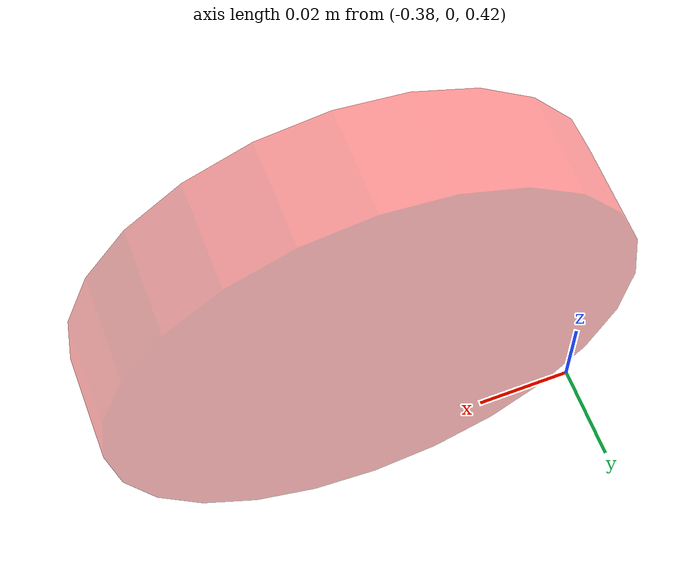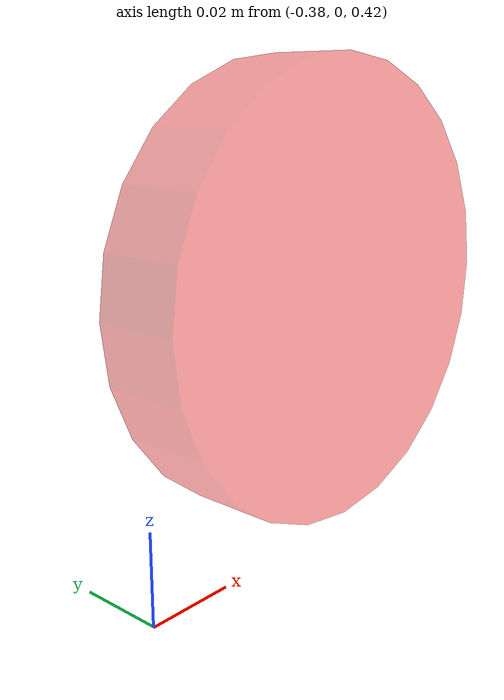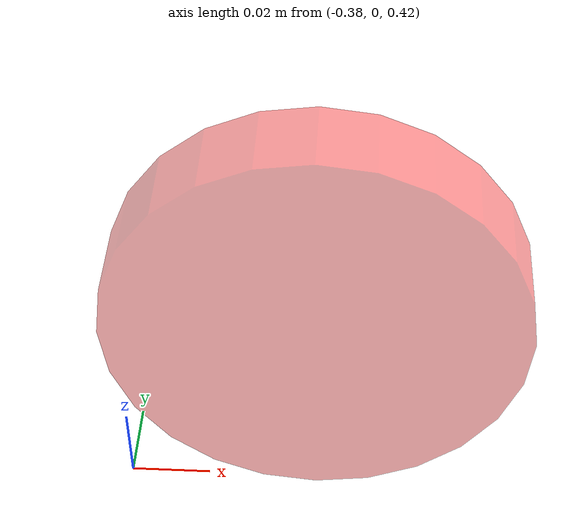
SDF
<?xml version="1.0" ?>
<sdf version="1.5">

  <model name="Red_light">
    <static>true</static>

      <link name='Red_light_source'>
      <pose>-0.332 0 0.48 1.57 0 0</pose>

      <light name='red' type='spot'>
        <pose>0 0 0.0 1.57 0 0</pose>
        <attenuation>
          <range>30</range>
          <linear>0.05</linear>
        </attenuation>
        <diffuse>0.5 1 1 1</diffuse>
        <specular>1 1 1 1</specular>
        <spot>
          <inner_angle>0.3</inner_angle>
          <outer_angle>0.35</outer_angle>
          <falloff>1</falloff>
        </spot>
        <direction>0 0 -1</direction>
      </light>

      <visual name='red'>
        <geometry>
          <cylinder>
            <radius>0.05</radius>
            <length>0.02</length>
          </cylinder>
          <sphere>
            <radius>0.08</radius>
          </sphere>
        </geometry>
        <transparency>0.6</transparency>

        <material>
          <ambient> 1 0 0 1</ambient>
          <diffuse> 1 0 0 1</diffuse>
          <specular>1 1 1 1</specular>
          <emissive>1 0 0 1</emissive>
        </material>

      </visual>
    </link>

  </model>

</sdf>
